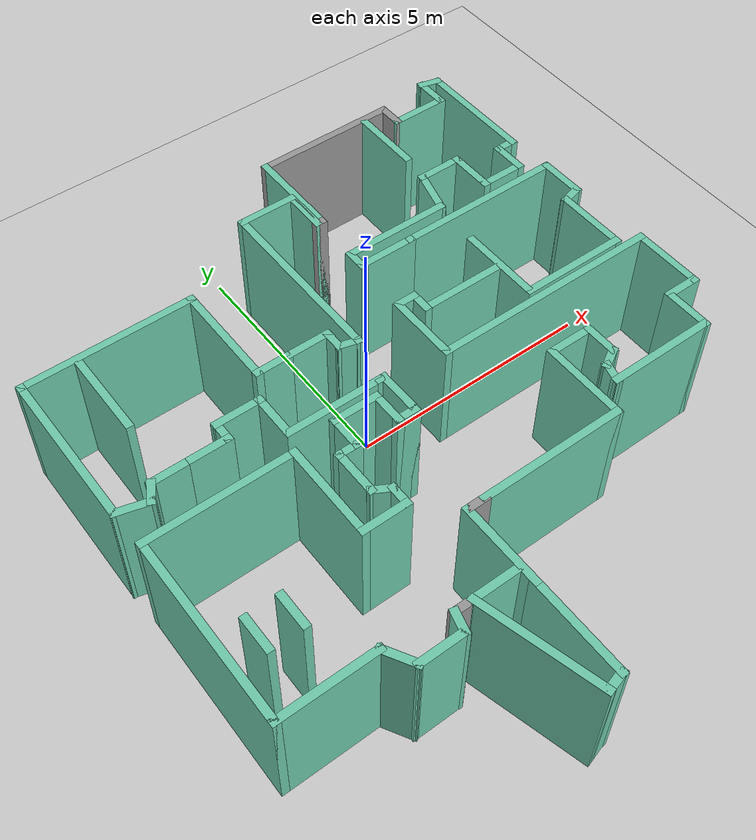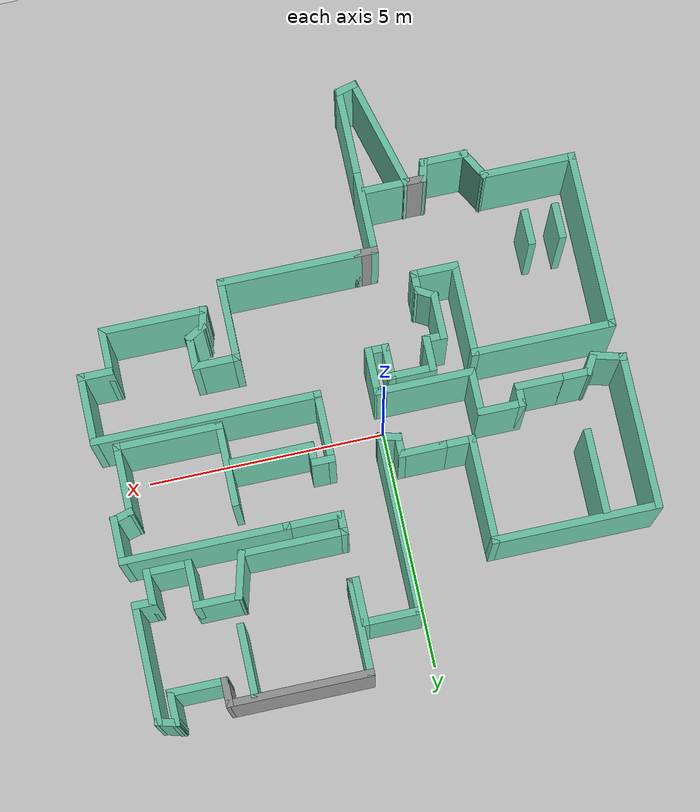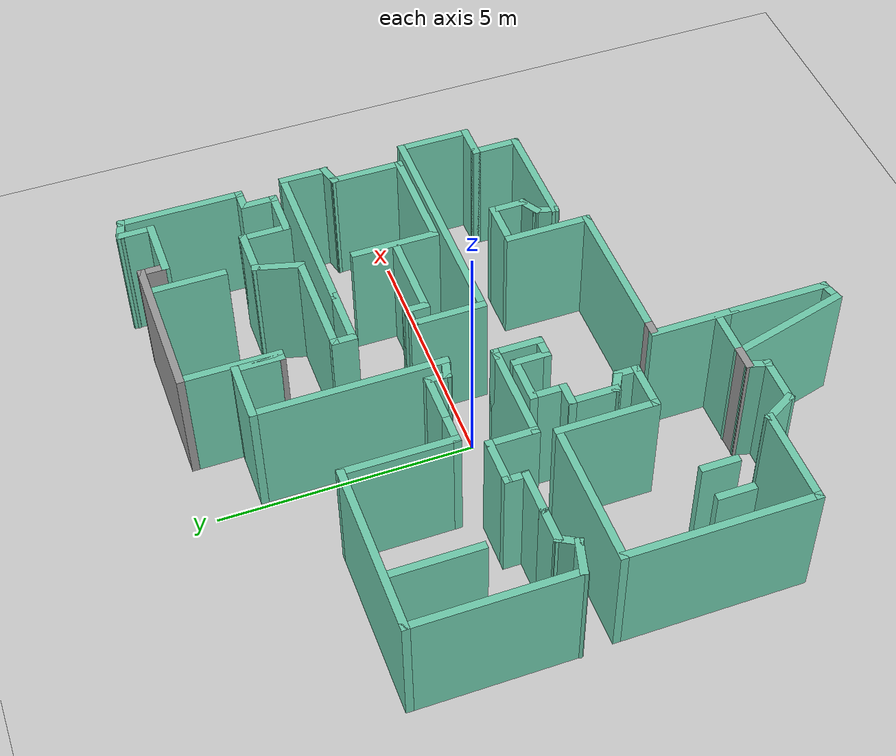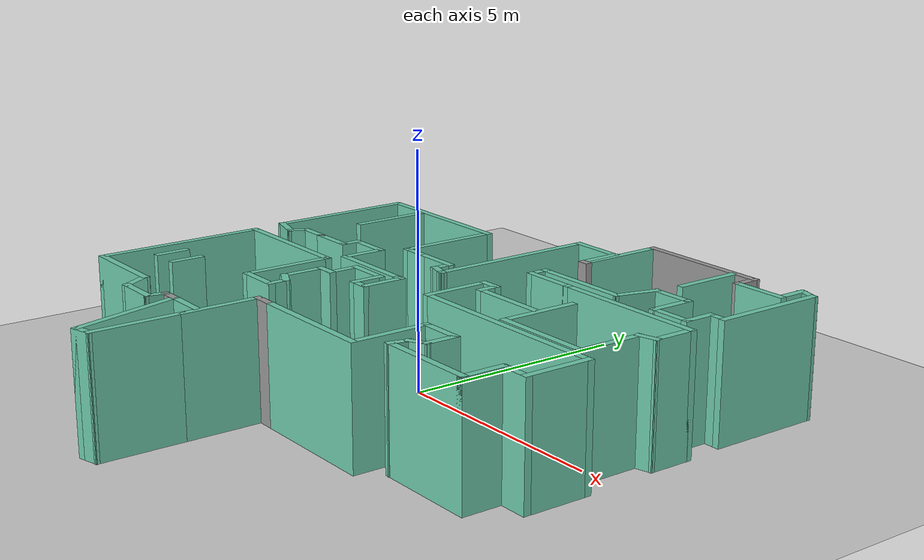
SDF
<sdf version="1.7">
 <world name="default">
  <model name="ground_plane">
   <static>1</static>
   <link name="link">
    <collision name="collision">
     <geometry><plane><normal>0 0 1</normal><size>100 100</size></plane></geometry>
     <surface>
      <contact><collide_bitmask>65535</collide_bitmask></contact>
      <friction><ode><mu>100</mu><mu2>50</mu2></ode></friction>
     </surface>
    </collision>
    <visual name="visual">
     <cast_shadows>0</cast_shadows>
     <geometry><plane><normal>0 0 1</normal><size>100 100</size></plane></geometry>
     <material>
      <script><uri>file://media/materials/scripts/gazebo.material</uri><name>Gazebo/Grey</name></script>
     </material>
    </visual>
   </link>
  </model>
  <model name="map_5">
   <pose>0.420015 -0.83457 0 0 -0 0</pose>
   <link name="Wall_10">
    <collision name="Wall_10_Collision">
     <geometry><box><size>2 0.15 2.5</size></box></geometry>
     <pose>0 0 1.25 0 -0 0</pose>
    </collision>
    <visual name="Wall_10_Visual">
     <pose>0 0 1.25 0 -0 0</pose>
     <geometry><box><size>2 0.15 2.5</size></box></geometry>
     <material>
      <script><uri>file://media/materials/scripts/gazebo.material</uri><name>Gazebo/Grey</name></script>
      <ambient>0.435294 0.796078 0.67451 1</ambient>
     </material>
     <meta><layer>0</layer></meta>
    </visual>
    <pose>0.946075 4.97016 0 0 -0 -1.5708</pose>
   </link>
   <link name="Wall_100">
    <collision name="Wall_100_Collision">
     <geometry><box><size>1.5 0.15 2.5</size></box></geometry>
     <pose>0 0 1.25 0 -0 0</pose>
    </collision>
    <visual name="Wall_100_Visual">
     <pose>0 0 1.25 0 -0 0</pose>
     <geometry><box><size>1.5 0.15 2.5</size></box></geometry>
     <material>
      <script><uri>file://media/materials/scripts/gazebo.material</uri><name>Gazebo/Grey</name></script>
      <ambient>0.435294 0.796078 0.67451 1</ambient>
     </material>
     <meta><layer>0</layer></meta>
    </visual>
    <pose>3.27534 5.13947 0 0 -0 -1.5708</pose>
   </link>
   <link name="Wall_102">
    <collision name="Wall_102_Collision">
     <geometry><box><size>1.75 0.15 2.5</size></box></geometry>
     <pose>0 0 1.25 0 -0 0</pose>
    </collision>
    <visual name="Wall_102_Visual">
     <pose>0 0 1.25 0 -0 0</pose>
     <geometry><box><size>1.75 0.15 2.5</size></box></geometry>
     <material>
      <script><uri>file://media/materials/scripts/gazebo.material</uri><name>Gazebo/Grey</name></script>
      <ambient>0.435294 0.796078 0.67451 1</ambient>
     </material>
     <meta><layer>0</layer></meta>
    </visual>
    <pose>-4.34162 2.90374 0 0 -0 -1.5708</pose>
   </link>
   <link name="Wall_104">
    <collision name="Wall_104_Collision">
     <geometry><box><size>1 0.15 2.5</size></box></geometry>
     <pose>0 0 1.25 0 -0 0</pose>
    </collision>
    <visual name="Wall_104_Visual">
     <pose>0 0 1.25 0 -0 0</pose>
     <geometry><box><size>1 0.15 2.5</size></box></geometry>
     <material>
      <script><uri>file://media/materials/scripts/gazebo.material</uri><name>Gazebo/Grey</name></script>
      <ambient>0.435294 0.796078 0.67451 1</ambient>
     </material>
     <meta><layer>0</layer></meta>
    </visual>
    <pose>-1.46875 -3.77297 0 0 -0 0</pose>
   </link>
   <link name="Wall_106">
    <collision name="Wall_106_Collision">
     <geometry><box><size>0.75 0.15 2.5</size></box></geometry>
     <pose>0 0 1.25 0 -0 0</pose>
    </collision>
    <visual name="Wall_106_Visual">
     <pose>0 0 1.25 0 -0 0</pose>
     <geometry><box><size>0.75 0.15 2.5</size></box></geometry>
     <material>
      <script><uri>file://media/materials/scripts/gazebo.material</uri><name>Gazebo/Grey</name></script>
      <ambient>0.435294 0.796078 0.67451 1</ambient>
     </material>
     <meta><layer>0</layer></meta>
    </visual>
    <pose>-4.76989 -2.31663 0 0 -0 -1.5708</pose>
   </link>
   <link name="Wall_108">
    <collision name="Wall_108_Collision">
     <geometry><box><size>0.75 0.15 2.5</size></box></geometry>
     <pose>0 0 1.25 0 -0 0</pose>
    </collision>
    <visual name="Wall_108_Visual">
     <pose>0 0 1.25 0 -0 0</pose>
     <geometry><box><size>0.75 0.15 2.5</size></box></geometry>
     <material>
      <script><uri>file://media/materials/scripts/gazebo.material</uri><name>Gazebo/Grey</name></script>
      <ambient>0.435294 0.796078 0.67451 1</ambient>
     </material>
     <meta><layer>0</layer></meta>
    </visual>
    <pose>-4.12749 -2.31663 0 0 -0 -1.5708</pose>
   </link>
   <link name="Wall_11">
    <collision name="Wall_11_Collision">
     <geometry><box><size>0.25 0.15 2.5</size></box></geometry>
     <pose>0 0 1.25 0 -0 0</pose>
    </collision>
    <visual name="Wall_11_Visual">
     <pose>0 0 1.25 0 -0 0</pose>
     <geometry><box><size>0.25 0.15 2.5</size></box></geometry>
     <material>
      <script><uri>file://media/materials/scripts/gazebo.material</uri><name>Gazebo/Grey</name></script>
      <ambient>1 1 1 1</ambient>
     </material>
     <meta><layer>0</layer></meta>
    </visual>
    <pose>0.896075 4.04516 0 0 -0 3.14159</pose>
   </link>
   <link name="Wall_12">
    <collision name="Wall_12_Collision">
     <geometry><box><size>1 0.15 2.5</size></box></geometry>
     <pose>0 0 1.25 0 -0 0</pose>
    </collision>
    <visual name="Wall_12_Visual">
     <pose>0 0 1.25 0 -0 0</pose>
     <geometry><box><size>1 0.15 2.5</size></box></geometry>
     <material>
      <script><uri>file://media/materials/scripts/gazebo.material</uri><name>Gazebo/Grey</name></script>
      <ambient>0.435294 0.796078 0.67451 1</ambient>
     </material>
     <meta><layer>0</layer></meta>
    </visual>
    <pose>0.846075 4.47016 0 0 -0 1.5708</pose>
   </link>
   <link name="Wall_13">
    <collision name="Wall_13_Collision">
     <geometry><box><size>1.25 0.15 2.5</size></box></geometry>
     <pose>0 0 1.25 0 -0 0</pose>
    </collision>
    <visual name="Wall_13_Visual">
     <pose>0 0 1.25 0 -0 0</pose>
     <geometry><box><size>1.25 0.15 2.5</size></box></geometry>
     <material>
      <script><uri>file://media/materials/scripts/gazebo.material</uri><name>Gazebo/Grey</name></script>
      <ambient>0.435294 0.796078 0.67451 1</ambient>
     </material>
     <meta><layer>0</layer></meta>
    </visual>
    <pose>0.296075 4.89516 0 0 -0 3.14159</pose>
   </link>
   <link name="Wall_14">
    <collision name="Wall_14_Collision">
     <geometry><box><size>3.75 0.15 2.5</size></box></geometry>
     <pose>0 0 1.25 0 -0 0</pose>
    </collision>
    <visual name="Wall_14_Visual">
     <pose>0 0 1.25 0 -0 0</pose>
     <geometry><box><size>3.75 0.15 2.5</size></box></geometry>
     <material>
      <script><uri>file://media/materials/scripts/gazebo.material</uri><name>Gazebo/Grey</name></script>
      <ambient>0.435294 0.796078 0.67451 1</ambient>
     </material>
     <meta><layer>0</layer></meta>
    </visual>
    <pose>-0.253925 3.09516 0 0 -0 -1.5708</pose>
   </link>
   <link name="Wall_15">
    <collision name="Wall_15_Collision">
     <geometry><box><size>0.5 0.15 2.5</size></box></geometry>
     <pose>0 0 1.25 0 -0 0</pose>
    </collision>
    <visual name="Wall_15_Visual">
     <pose>0 0 1.25 0 -0 0</pose>
     <geometry><box><size>0.5 0.15 2.5</size></box></geometry>
     <material>
      <script><uri>file://media/materials/scripts/gazebo.material</uri><name>Gazebo/Grey</name></script>
      <ambient>0.435294 0.796078 0.67451 1</ambient>
     </material>
     <meta><layer>0</layer></meta>
    </visual>
    <pose>-0.422962 1.34046 0 0 -0 2.87979</pose>
   </link>
   <link name="Wall_16">
    <collision name="Wall_16_Collision">
     <geometry><box><size>0.5 0.15 2.5</size></box></geometry>
     <pose>0 0 1.25 0 -0 0</pose>
    </collision>
    <visual name="Wall_16_Visual">
     <pose>0 0 1.25 0 -0 0</pose>
     <geometry><box><size>0.5 0.15 2.5</size></box></geometry>
     <material>
      <script><uri>file://media/materials/scripts/gazebo.material</uri><name>Gazebo/Grey</name></script>
      <ambient>0.435294 0.796078 0.67451 1</ambient>
     </material>
     <meta><layer>0</layer></meta>
    </visual>
    <pose>-0.591999 1.56075 0 0 -0 1.5708</pose>
   </link>
   <link name="Wall_17">
    <collision name="Wall_17_Collision">
     <geometry><box><size>1 0.15 2.5</size></box></geometry>
     <pose>0 0 1.25 0 -0 0</pose>
    </collision>
    <visual name="Wall_17_Visual">
     <pose>0 0 1.25 0 -0 0</pose>
     <geometry><box><size>1 0.15 2.5</size></box></geometry>
     <material>
      <script><uri>file://media/materials/scripts/gazebo.material</uri><name>Gazebo/Grey</name></script>
      <ambient>0.435294 0.796078 0.67451 1</ambient>
     </material>
     <meta><layer>0</layer></meta>
    </visual>
    <pose>-1.017 1.73575 0 0 -0 3.14159</pose>
   </link>
   <link name="Wall_18">
    <collision name="Wall_18_Collision">
     <geometry><box><size>0.75 0.15 2.5</size></box></geometry>
     <pose>0 0 1.25 0 -0 0</pose>
    </collision>
    <visual name="Wall_18_Visual">
     <pose>0 0 1.25 0 -0 0</pose>
     <geometry><box><size>0.75 0.15 2.5</size></box></geometry>
     <material>
      <script><uri>file://media/materials/scripts/gazebo.material</uri><name>Gazebo/Grey</name></script>
      <ambient>0.435294 0.796078 0.67451 1</ambient>
     </material>
     <meta><layer>0</layer></meta>
    </visual>
    <pose>-1.742 1.73575 0 0 -0 3.14159</pose>
   </link>
   <link name="Wall_19">
    <collision name="Wall_19_Collision">
     <geometry><box><size>2.25 0.15 2.5</size></box></geometry>
     <pose>0 0 1.25 0 -0 0</pose>
    </collision>
    <visual name="Wall_19_Visual">
     <pose>0 0 1.25 0 -0 0</pose>
     <geometry><box><size>2.25 0.15 2.5</size></box></geometry>
     <material>
      <script><uri>file://media/materials/scripts/gazebo.material</uri><name>Gazebo/Grey</name></script>
      <ambient>0.435294 0.796078 0.67451 1</ambient>
     </material>
     <meta><layer>0</layer></meta>
    </visual>
    <pose>-2.042 2.78575 0 0 -0 1.5708</pose>
   </link>
   <link name="Wall_20">
    <collision name="Wall_20_Collision">
     <geometry><box><size>3.5 0.15 2.5</size></box></geometry>
     <pose>0 0 1.25 0 -0 0</pose>
    </collision>
    <visual name="Wall_20_Visual">
     <pose>0 0 1.25 0 -0 0</pose>
     <geometry><box><size>3.5 0.15 2.5</size></box></geometry>
     <material>
      <script><uri>file://media/materials/scripts/gazebo.material</uri><name>Gazebo/Grey</name></script>
      <ambient>0.435294 0.796078 0.67451 1</ambient>
     </material>
     <meta><layer>0</layer></meta>
    </visual>
    <pose>-3.717 3.83575 0 0 -0 3.14159</pose>
   </link>
   <link name="Wall_21">
    <collision name="Wall_21_Collision">
     <geometry><box><size>3.25 0.15 2.5</size></box></geometry>
     <pose>0 0 1.25 0 -0 0</pose>
    </collision>
    <visual name="Wall_21_Visual">
     <pose>0 0 1.25 0 -0 0</pose>
     <geometry><box><size>3.25 0.15 2.5</size></box></geometry>
     <material>
      <script><uri>file://media/materials/scripts/gazebo.material</uri><name>Gazebo/Grey</name></script>
      <ambient>0.435294 0.796078 0.67451 1</ambient>
     </material>
     <meta><layer>0</layer></meta>
    </visual>
    <pose>-5.392 2.28575 0 0 -0 -1.5708</pose>
   </link>
   <link name="Wall_22">
    <collision name="Wall_22_Collision">
     <geometry><box><size>0.75 0.15 2.5</size></box></geometry>
     <pose>0 0 1.25 0 -0 0</pose>
    </collision>
    <visual name="Wall_22_Visual">
     <pose>0 0 1.25 0 -0 0</pose>
     <geometry><box><size>0.75 0.15 2.5</size></box></geometry>
     <material>
      <script><uri>file://media/materials/scripts/gazebo.material</uri><name>Gazebo/Grey</name></script>
      <ambient>0.435294 0.796078 0.67451 1</ambient>
     </material>
     <meta><layer>0</layer></meta>
    </visual>
    <pose>-5.10222 0.658104 0 0 -0 -0.261799</pose>
   </link>
   <link name="Wall_23">
    <collision name="Wall_23_Collision">
     <geometry><box><size>0.5 0.15 2.5</size></box></geometry>
     <pose>0 0 1.25 0 -0 0</pose>
    </collision>
    <visual name="Wall_23_Visual">
     <pose>0 0 1.25 0 -0 0</pose>
     <geometry><box><size>0.5 0.15 2.5</size></box></geometry>
     <material>
      <script><uri>file://media/materials/scripts/gazebo.material</uri><name>Gazebo/Grey</name></script>
      <ambient>0.435294 0.796078 0.67451 1</ambient>
     </material>
     <meta><layer>0</layer></meta>
    </visual>
    <pose>-4.72494 0.732012 0 0 -0 1.0472</pose>
   </link>
   <link name="Wall_24">
    <collision name="Wall_24_Collision">
     <geometry><box><size>0.75 0.15 2.5</size></box></geometry>
     <pose>0 0 1.25 0 -0 0</pose>
    </collision>
    <visual name="Wall_24_Visual">
     <pose>0 0 1.25 0 -0 0</pose>
     <geometry><box><size>0.75 0.15 2.5</size></box></geometry>
     <material>
      <script><uri>file://media/materials/scripts/gazebo.material</uri><name>Gazebo/Grey</name></script>
      <ambient>0.435294 0.796078 0.67451 1</ambient>
     </material>
     <meta><layer>0</layer></meta>
    </visual>
    <pose>-4.33744 0.883567 0 0 -0 0</pose>
   </link>
   <link name="Wall_25">
    <collision name="Wall_25_Collision">
     <geometry><box><size>0.15 0.15 2.5</size></box></geometry>
     <pose>0 0 1.25 0 -0 0</pose>
    </collision>
    <visual name="Wall_25_Visual">
     <pose>0 0 1.25 0 -0 0</pose>
     <geometry><box><size>0.15 0.15 2.5</size></box></geometry>
     <material>
      <script><uri>file://media/materials/scripts/gazebo.material</uri><name>Gazebo/Grey</name></script>
      <ambient>1 1 1 1</ambient>
     </material>
     <meta><layer>0</layer></meta>
    </visual>
    <pose>-4.03744 0.883567 0 0 -0 0</pose>
   </link>
   <link name="Wall_26">
    <collision name="Wall_26_Collision">
     <geometry><box><size>1 0.15 2.5</size></box></geometry>
     <pose>0 0 1.25 0 -0 0</pose>
    </collision>
    <visual name="Wall_26_Visual">
     <pose>0 0 1.25 0 -0 0</pose>
     <geometry><box><size>1 0.15 2.5</size></box></geometry>
     <material>
      <script><uri>file://media/materials/scripts/gazebo.material</uri><name>Gazebo/Grey</name></script>
      <ambient>0.435294 0.796078 0.67451 1</ambient>
     </material>
     <meta><layer>0</layer></meta>
    </visual>
    <pose>-3.61244 0.883567 0 0 -0 0</pose>
   </link>
   <link name="Wall_27">
    <collision name="Wall_27_Collision">
     <geometry><box><size>0.5 0.15 2.5</size></box></geometry>
     <pose>0 0 1.25 0 -0 0</pose>
    </collision>
    <visual name="Wall_27_Visual">
     <pose>0 0 1.25 0 -0 0</pose>
     <geometry><box><size>0.5 0.15 2.5</size></box></geometry>
     <material>
      <script><uri>file://media/materials/scripts/gazebo.material</uri><name>Gazebo/Grey</name></script>
      <ambient>0.435294 0.796078 0.67451 1</ambient>
     </material>
     <meta><layer>0</layer></meta>
    </visual>
    <pose>-3.18744 1.05857 0 0 -0 1.5708</pose>
   </link>
   <link name="Wall_28">
    <collision name="Wall_28_Collision">
     <geometry><box><size>1 0.15 2.5</size></box></geometry>
     <pose>0 0 1.25 0 -0 0</pose>
    </collision>
    <visual name="Wall_28_Visual">
     <pose>0 0 1.25 0 -0 0</pose>
     <geometry><box><size>1 0.15 2.5</size></box></geometry>
     <material>
      <script><uri>file://media/materials/scripts/gazebo.material</uri><name>Gazebo/Grey</name></script>
      <ambient>0.435294 0.796078 0.67451 1</ambient>
     </material>
     <meta><layer>0</layer></meta>
    </visual>
    <pose>-2.76244 1.23357 0 0 -0 0</pose>
   </link>
   <link name="Wall_29">
    <collision name="Wall_29_Collision">
     <geometry><box><size>1 0.15 2.5</size></box></geometry>
     <pose>0 0 1.25 0 -0 0</pose>
    </collision>
    <visual name="Wall_29_Visual">
     <pose>0 0 1.25 0 -0 0</pose>
     <geometry><box><size>1 0.15 2.5</size></box></geometry>
     <material>
      <script><uri>file://media/materials/scripts/gazebo.material</uri><name>Gazebo/Grey</name></script>
      <ambient>0.435294 0.796078 0.67451 1</ambient>
     </material>
     <meta><layer>0</layer></meta>
    </visual>
    <pose>-2.33744 0.808567 0 0 -0 -1.5708</pose>
   </link>
   <link name="Wall_30">
    <collision name="Wall_30_Collision">
     <geometry><box><size>2 0.15 2.5</size></box></geometry>
     <pose>0 0 1.25 0 -0 0</pose>
    </collision>
    <visual name="Wall_30_Visual">
     <pose>0 0 1.25 0 -0 0</pose>
     <geometry><box><size>2 0.15 2.5</size></box></geometry>
     <material>
      <script><uri>file://media/materials/scripts/gazebo.material</uri><name>Gazebo/Grey</name></script>
      <ambient>0.435294 0.796078 0.67451 1</ambient>
     </material>
     <meta><layer>0</layer></meta>
    </visual>
    <pose>-1.41244 0.383567 0 0 -0 0</pose>
   </link>
   <link name="Wall_32">
    <collision name="Wall_32_Collision">
     <geometry><box><size>0.25 0.15 2.5</size></box></geometry>
     <pose>0 0 1.25 0 -0 0</pose>
    </collision>
    <visual name="Wall_32_Visual">
     <pose>0 0 1.25 0 -0 0</pose>
     <geometry><box><size>0.25 0.15 2.5</size></box></geometry>
     <material>
      <script><uri>file://media/materials/scripts/gazebo.material</uri><name>Gazebo/Grey</name></script>
      <ambient>0.435294 0.796078 0.67451 1</ambient>
     </material>
     <meta><layer>0</layer></meta>
    </visual>
    <pose>-0.437444 0.383567 0 0 -0 0</pose>
   </link>
   <link name="Wall_33">
    <collision name="Wall_33_Collision">
     <geometry><box><size>1 0.15 2.5</size></box></geometry>
     <pose>0 0 1.25 0 -0 0</pose>
    </collision>
    <visual name="Wall_33_Visual">
     <pose>0 0 1.25 0 -0 0</pose>
     <geometry><box><size>1 0.15 2.5</size></box></geometry>
     <material>
      <script><uri>file://media/materials/scripts/gazebo.material</uri><name>Gazebo/Grey</name></script>
      <ambient>0.435294 0.796078 0.67451 1</ambient>
     </material>
     <meta><layer>0</layer></meta>
    </visual>
    <pose>-0.387444 -0.041433 0 0 -0 -1.5708</pose>
   </link>
   <link name="Wall_34">
    <collision name="Wall_34_Collision">
     <geometry><box><size>0.5 0.15 2.5</size></box></geometry>
     <pose>0 0 1.25 0 -0 0</pose>
    </collision>
    <visual name="Wall_34_Visual">
     <pose>0 0 1.25 0 -0 0</pose>
     <geometry><box><size>0.5 0.15 2.5</size></box></geometry>
     <material>
      <script><uri>file://media/materials/scripts/gazebo.material</uri><name>Gazebo/Grey</name></script>
      <ambient>0.435294 0.796078 0.67451 1</ambient>
     </material>
     <meta><layer>0</layer></meta>
    </visual>
    <pose>-0.562444 -0.466433 0 0 -0 3.14159</pose>
   </link>
   <link name="Wall_35">
    <collision name="Wall_35_Collision">
     <geometry><box><size>0.75 0.15 2.5</size></box></geometry>
     <pose>0 0 1.25 0 -0 0</pose>
    </collision>
    <visual name="Wall_35_Visual">
     <pose>0 0 1.25 0 -0 0</pose>
     <geometry><box><size>0.75 0.15 2.5</size></box></geometry>
     <material>
      <script><uri>file://media/materials/scripts/gazebo.material</uri><name>Gazebo/Grey</name></script>
      <ambient>0.435294 0.796078 0.67451 1</ambient>
     </material>
     <meta><layer>0</layer></meta>
    </visual>
    <pose>-0.737444 -0.166433 0 0 -0 1.5708</pose>
   </link>
   <link name="Wall_36">
    <collision name="Wall_36_Collision">
     <geometry><box><size>1 0.15 2.5</size></box></geometry>
     <pose>0 0 1.25 0 -0 0</pose>
    </collision>
    <visual name="Wall_36_Visual">
     <pose>0 0 1.25 0 -0 0</pose>
     <geometry><box><size>1 0.15 2.5</size></box></geometry>
     <material>
      <script><uri>file://media/materials/scripts/gazebo.material</uri><name>Gazebo/Grey</name></script>
      <ambient>0.435294 0.796078 0.67451 1</ambient>
     </material>
     <meta><layer>0</layer></meta>
    </visual>
    <pose>-1.16244 0.133567 0 0 -0 3.14159</pose>
   </link>
   <link name="Wall_37">
    <collision name="Wall_37_Collision">
     <geometry><box><size>0.75 0.15 2.5</size></box></geometry>
     <pose>0 0 1.25 0 -0 0</pose>
    </collision>
    <visual name="Wall_37_Visual">
     <pose>0 0 1.25 0 -0 0</pose>
     <geometry><box><size>0.75 0.15 2.5</size></box></geometry>
     <material>
      <script><uri>file://media/materials/scripts/gazebo.material</uri><name>Gazebo/Grey</name></script>
      <ambient>0.435294 0.796078 0.67451 1</ambient>
     </material>
     <meta><layer>0</layer></meta>
    </visual>
    <pose>-1.58744 -0.166433 0 0 -0 -1.5708</pose>
   </link>
   <link name="Wall_38">
    <collision name="Wall_38_Collision">
     <geometry><box><size>0.5 0.15 2.5</size></box></geometry>
     <pose>0 0 1.25 0 -0 0</pose>
    </collision>
    <visual name="Wall_38_Visual">
     <pose>0 0 1.25 0 -0 0</pose>
     <geometry><box><size>0.5 0.15 2.5</size></box></geometry>
     <material>
      <script><uri>file://media/materials/scripts/gazebo.material</uri><name>Gazebo/Grey</name></script>
      <ambient>0.435294 0.796078 0.67451 1</ambient>
     </material>
     <meta><layer>0</layer></meta>
    </visual>
    <pose>-1.76244 -0.466433 0 0 -0 3.14159</pose>
   </link>
   <link name="Wall_39">
    <collision name="Wall_39_Collision">
     <geometry><box><size>1 0.15 2.5</size></box></geometry>
     <pose>0 0 1.25 0 -0 0</pose>
    </collision>
    <visual name="Wall_39_Visual">
     <pose>0 0 1.25 0 -0 0</pose>
     <geometry><box><size>1 0.15 2.5</size></box></geometry>
     <material>
      <script><uri>file://media/materials/scripts/gazebo.material</uri><name>Gazebo/Grey</name></script>
      <ambient>0.435294 0.796078 0.67451 1</ambient>
     </material>
     <meta><layer>0</layer></meta>
    </visual>
    <pose>-1.93744 -0.891433 0 0 -0 -1.5708</pose>
   </link>
   <link name="Wall_40">
    <collision name="Wall_40_Collision">
     <geometry><box><size>0.5 0.15 2.5</size></box></geometry>
     <pose>0 0 1.25 0 -0 0</pose>
    </collision>
    <visual name="Wall_40_Visual">
     <pose>0 0 1.25 0 -0 0</pose>
     <geometry><box><size>0.5 0.15 2.5</size></box></geometry>
     <material>
      <script><uri>file://media/materials/scripts/gazebo.material</uri><name>Gazebo/Grey</name></script>
      <ambient>0.435294 0.796078 0.67451 1</ambient>
     </material>
     <meta><layer>0</layer></meta>
    </visual>
    <pose>-1.78589 -1.40393 0 0 -0 -0.523599</pose>
   </link>
   <link name="Wall_41">
    <collision name="Wall_41_Collision">
     <geometry><box><size>0.5 0.15 2.5</size></box></geometry>
     <pose>0 0 1.25 0 -0 0</pose>
    </collision>
    <visual name="Wall_41_Visual">
     <pose>0 0 1.25 0 -0 0</pose>
     <geometry><box><size>0.5 0.15 2.5</size></box></geometry>
     <material>
      <script><uri>file://media/materials/scripts/gazebo.material</uri><name>Gazebo/Grey</name></script>
      <ambient>0.435294 0.796078 0.67451 1</ambient>
     </material>
     <meta><layer>0</layer></meta>
    </visual>
    <pose>-1.63434 -1.66643 0 0 -0 -1.5708</pose>
   </link>
   <link name="Wall_42">
    <collision name="Wall_42_Collision">
     <geometry><box><size>1 0.15 2.5</size></box></geometry>
     <pose>0 0 1.25 0 -0 0</pose>
    </collision>
    <visual name="Wall_42_Visual">
     <pose>0 0 1.25 0 -0 0</pose>
     <geometry><box><size>1 0.15 2.5</size></box></geometry>
     <material>
      <script><uri>file://media/materials/scripts/gazebo.material</uri><name>Gazebo/Grey</name></script>
      <ambient>0.435294 0.796078 0.67451 1</ambient>
     </material>
     <meta><layer>0</layer></meta>
    </visual>
    <pose>-2.05933 -1.84143 0 0 -0 3.14159</pose>
   </link>
   <link name="Wall_43">
    <collision name="Wall_43_Collision">
     <geometry><box><size>2 0.15 2.5</size></box></geometry>
     <pose>0 0 1.25 0 -0 0</pose>
    </collision>
    <visual name="Wall_43_Visual">
     <pose>0 0 1.25 0 -0 0</pose>
     <geometry><box><size>2 0.15 2.5</size></box></geometry>
     <material>
      <script><uri>file://media/materials/scripts/gazebo.material</uri><name>Gazebo/Grey</name></script>
      <ambient>0.435294 0.796078 0.67451 1</ambient>
     </material>
     <meta><layer>0</layer></meta>
    </visual>
    <pose>-2.48434 -0.916433 0 0 -0 1.5708</pose>
   </link>
   <link name="Wall_44">
    <collision name="Wall_44_Collision">
     <geometry><box><size>3 0.15 2.5</size></box></geometry>
     <pose>0 0 1.25 0 -0 0</pose>
    </collision>
    <visual name="Wall_44_Visual">
     <pose>0 0 1.25 0 -0 0</pose>
     <geometry><box><size>3 0.15 2.5</size></box></geometry>
     <material>
      <script><uri>file://media/materials/scripts/gazebo.material</uri><name>Gazebo/Grey</name></script>
      <ambient>0.435294 0.796078 0.67451 1</ambient>
     </material>
     <meta><layer>0</layer></meta>
    </visual>
    <pose>-3.90934 0.008567 0 0 -0 3.14159</pose>
   </link>
   <link name="Wall_45">
    <collision name="Wall_45_Collision">
     <geometry><box><size>3.75 0.15 2.5</size></box></geometry>
     <pose>0 0 1.25 0 -0 0</pose>
    </collision>
    <visual name="Wall_45_Visual">
     <pose>0 0 1.25 0 -0 0</pose>
     <geometry><box><size>3.75 0.15 2.5</size></box></geometry>
     <material>
      <script><uri>file://media/materials/scripts/gazebo.material</uri><name>Gazebo/Grey</name></script>
      <ambient>0.435294 0.796078 0.67451 1</ambient>
     </material>
     <meta><layer>0</layer></meta>
    </visual>
    <pose>-5.33434 -1.79143 0 0 -0 -1.5708</pose>
   </link>
   <link name="Wall_46">
    <collision name="Wall_46_Collision">
     <geometry><box><size>2 0.15 2.5</size></box></geometry>
     <pose>0 0 1.25 0 -0 0</pose>
    </collision>
    <visual name="Wall_46_Visual">
     <pose>0 0 1.25 0 -0 0</pose>
     <geometry><box><size>2 0.15 2.5</size></box></geometry>
     <material>
      <script><uri>file://media/materials/scripts/gazebo.material</uri><name>Gazebo/Grey</name></script>
      <ambient>0.435294 0.796078 0.67451 1</ambient>
     </material>
     <meta><layer>0</layer></meta>
    </visual>
    <pose>-4.40933 -3.59143 0 0 -0 0</pose>
   </link>
   <link name="Wall_47">
    <collision name="Wall_47_Collision">
     <geometry><box><size>0.75 0.15 2.5</size></box></geometry>
     <pose>0 0 1.25 0 -0 0</pose>
    </collision>
    <visual name="Wall_47_Visual">
     <pose>0 0 1.25 0 -0 0</pose>
     <geometry><box><size>0.75 0.15 2.5</size></box></geometry>
     <material>
      <script><uri>file://media/materials/scripts/gazebo.material</uri><name>Gazebo/Grey</name></script>
      <ambient>0.435294 0.796078 0.67451 1</ambient>
     </material>
     <meta><layer>0</layer></meta>
    </visual>
    <pose>-3.33433 -3.85124 0 0 -0 -1.0472</pose>
   </link>
   <link name="Wall_48">
    <collision name="Wall_48_Collision">
     <geometry><box><size>1 0.15 2.5</size></box></geometry>
     <pose>0 0 1.25 0 -0 0</pose>
    </collision>
    <visual name="Wall_48_Visual">
     <pose>0 0 1.25 0 -0 0</pose>
     <geometry><box><size>1 0.15 2.5</size></box></geometry>
     <material>
      <script><uri>file://media/materials/scripts/gazebo.material</uri><name>Gazebo/Grey</name></script>
      <ambient>0.435294 0.796078 0.67451 1</ambient>
     </material>
     <meta><layer>0</layer></meta>
    </visual>
    <pose>-2.75934 -4.11105 0 0 -0 0</pose>
   </link>
   <link name="Wall_49">
    <collision name="Wall_49_Collision">
     <geometry><box><size>0.5 0.15 2.5</size></box></geometry>
     <pose>0 0 1.25 0 -0 0</pose>
    </collision>
    <visual name="Wall_49_Visual">
     <pose>0 0 1.25 0 -0 0</pose>
     <geometry><box><size>0.5 0.15 2.5</size></box></geometry>
     <material>
      <script><uri>file://media/materials/scripts/gazebo.material</uri><name>Gazebo/Grey</name></script>
      <ambient>0.435294 0.796078 0.67451 1</ambient>
     </material>
     <meta><layer>0</layer></meta>
    </visual>
    <pose>-2.28904 -3.94201 0 0 -0 1.309</pose>
   </link>
   <link name="Wall_50">
    <collision name="Wall_50_Collision">
     <geometry><box><size>0.5 0.15 2.5</size></box></geometry>
     <pose>0 0 1.25 0 -0 0</pose>
    </collision>
    <visual name="Wall_50_Visual">
     <pose>0 0 1.25 0 -0 0</pose>
     <geometry><box><size>0.5 0.15 2.5</size></box></geometry>
     <material>
      <script><uri>file://media/materials/scripts/gazebo.material</uri><name>Gazebo/Grey</name></script>
      <ambient>1 1 1 1</ambient>
     </material>
     <meta><layer>0</layer></meta>
    </visual>
    <pose>-2.06875 -3.77297 0 0 -0 0</pose>
   </link>
   <link name="Wall_51">
    <collision name="Wall_51_Collision">
     <geometry><box><size>2.5 0.15 2.5</size></box></geometry>
     <pose>0 0 1.25 0 -0 0</pose>
    </collision>
    <visual name="Wall_51_Visual">
     <pose>0 0 1.25 0 -0 0</pose>
     <geometry><box><size>2.5 0.15 2.5</size></box></geometry>
     <material>
      <script><uri>file://media/materials/scripts/gazebo.material</uri><name>Gazebo/Grey</name></script>
      <ambient>0.435294 0.796078 0.67451 1</ambient>
     </material>
     <meta><layer>0</layer></meta>
    </visual>
    <pose>-1.58964 -4.90794 0 0 -0 -1.309</pose>
   </link>
   <link name="Wall_52">
    <collision name="Wall_52_Collision">
     <geometry><box><size>0.5 0.15 2.5</size></box></geometry>
     <pose>0 0 1.25 0 -0 0</pose>
    </collision>
    <visual name="Wall_52_Visual">
     <pose>0 0 1.25 0 -0 0</pose>
     <geometry><box><size>0.5 0.15 2.5</size></box></geometry>
     <material>
      <script><uri>file://media/materials/scripts/gazebo.material</uri><name>Gazebo/Grey</name></script>
      <ambient>0.435294 0.796078 0.67451 1</ambient>
     </material>
     <meta><layer>0</layer></meta>
    </visual>
    <pose>-1.11649 -5.99761 0 0 -0 0.261799</pose>
   </link>
   <link name="Wall_53">
    <collision name="Wall_53_Collision">
     <geometry><box><size>2 0.15 2.5</size></box></geometry>
     <pose>0 0 1.25 0 -0 0</pose>
    </collision>
    <visual name="Wall_53_Visual">
     <pose>0 0 1.25 0 -0 0</pose>
     <geometry><box><size>2 0.15 2.5</size></box></geometry>
     <material>
      <script><uri>file://media/materials/scripts/gazebo.material</uri><name>Gazebo/Grey</name></script>
      <ambient>0.435294 0.796078 0.67451 1</ambient>
     </material>
     <meta><layer>0</layer></meta>
    </visual>
    <pose>-0.947449 -5.02731 0 0 -0 1.5708</pose>
   </link>
   <link name="Wall_54">
    <collision name="Wall_54_Collision">
     <geometry><box><size>1.75 0.15 2.5</size></box></geometry>
     <pose>0 0 1.25 0 -0 0</pose>
    </collision>
    <visual name="Wall_54_Visual">
     <pose>0 0 1.25 0 -0 0</pose>
     <geometry><box><size>1.75 0.15 2.5</size></box></geometry>
     <material>
      <script><uri>file://media/materials/scripts/gazebo.material</uri><name>Gazebo/Grey</name></script>
      <ambient>0.435294 0.796078 0.67451 1</ambient>
     </material>
     <meta><layer>0</layer></meta>
    </visual>
    <pose>-0.947449 -3.30231 0 0 -0 1.5708</pose>
   </link>
   <link name="Wall_55">
    <collision name="Wall_55_Collision">
     <geometry><box><size>0.5 0.15 2.5</size></box></geometry>
     <pose>0 0 1.25 0 -0 0</pose>
    </collision>
    <visual name="Wall_55_Visual">
     <pose>0 0 1.25 0 -0 0</pose>
     <geometry><box><size>0.5 0.15 2.5</size></box></geometry>
     <material>
      <script><uri>file://media/materials/scripts/gazebo.material</uri><name>Gazebo/Grey</name></script>
      <ambient>1 1 1 1</ambient>
     </material>
     <meta><layer>0</layer></meta>
    </visual>
    <pose>-0.772449 -2.50231 0 0 -0 0</pose>
   </link>
   <link name="Wall_56">
    <collision name="Wall_56_Collision">
     <geometry><box><size>3 0.15 2.5</size></box></geometry>
     <pose>0 0 1.25 0 -0 0</pose>
    </collision>
    <visual name="Wall_56_Visual">
     <pose>0 0 1.25 0 -0 0</pose>
     <geometry><box><size>3 0.15 2.5</size></box></geometry>
     <material>
      <script><uri>file://media/materials/scripts/gazebo.material</uri><name>Gazebo/Grey</name></script>
      <ambient>0.435294 0.796078 0.67451 1</ambient>
     </material>
     <meta><layer>0</layer></meta>
    </visual>
    <pose>0.827551 -2.50231 0 0 -0 0</pose>
   </link>
   <link name="Wall_57">
    <collision name="Wall_57_Collision">
     <geometry><box><size>1.75 0.15 2.5</size></box></geometry>
     <pose>0 0 1.25 0 -0 0</pose>
    </collision>
    <visual name="Wall_57_Visual">
     <pose>0 0 1.25 0 -0 0</pose>
     <geometry><box><size>1.75 0.15 2.5</size></box></geometry>
     <material>
      <script><uri>file://media/materials/scripts/gazebo.material</uri><name>Gazebo/Grey</name></script>
      <ambient>0.435294 0.796078 0.67451 1</ambient>
     </material>
     <meta><layer>0</layer></meta>
    </visual>
    <pose>2.25255 -1.70231 0 0 -0 1.5708</pose>
   </link>
   <link name="Wall_58">
    <collision name="Wall_58_Collision">
     <geometry><box><size>1 0.15 2.5</size></box></geometry>
     <pose>0 0 1.25 0 -0 0</pose>
    </collision>
    <visual name="Wall_58_Visual">
     <pose>0 0 1.25 0 -0 0</pose>
     <geometry><box><size>1 0.15 2.5</size></box></geometry>
     <material>
      <script><uri>file://media/materials/scripts/gazebo.material</uri><name>Gazebo/Grey</name></script>
      <ambient>0.435294 0.796078 0.67451 1</ambient>
     </material>
     <meta><layer>0</layer></meta>
    </visual>
    <pose>2.67755 -0.902313 0 0 -0 0</pose>
   </link>
   <link name="Wall_59">
    <collision name="Wall_59_Collision">
     <geometry><box><size>0.75 0.15 2.5</size></box></geometry>
     <pose>0 0 1.25 0 -0 0</pose>
    </collision>
    <visual name="Wall_59_Visual">
     <pose>0 0 1.25 0 -0 0</pose>
     <geometry><box><size>0.75 0.15 2.5</size></box></geometry>
     <material>
      <script><uri>file://media/materials/scripts/gazebo.material</uri><name>Gazebo/Grey</name></script>
      <ambient>0.435294 0.796078 0.67451 1</ambient>
     </material>
     <meta><layer>0</layer></meta>
    </visual>
    <pose>3.10255 -1.20231 0 0 -0 -1.5708</pose>
   </link>
   <link name="Wall_60">
    <collision name="Wall_60_Collision">
     <geometry><box><size>0.5 0.15 2.5</size></box></geometry>
     <pose>0 0 1.25 0 -0 0</pose>
    </collision>
    <visual name="Wall_60_Visual">
     <pose>0 0 1.25 0 -0 0</pose>
     <geometry><box><size>0.5 0.15 2.5</size></box></geometry>
     <material>
      <script><uri>file://media/materials/scripts/gazebo.material</uri><name>Gazebo/Grey</name></script>
      <ambient>0.435294 0.796078 0.67451 1</ambient>
     </material>
     <meta><layer>0</layer></meta>
    </visual>
    <pose>2.951 -1.58981 0 0 -0 -2.61799</pose>
   </link>
   <link name="Wall_61">
    <collision name="Wall_61_Collision">
     <geometry><box><size>0.5 0.15 2.5</size></box></geometry>
     <pose>0 0 1.25 0 -0 0</pose>
    </collision>
    <visual name="Wall_61_Visual">
     <pose>0 0 1.25 0 -0 0</pose>
     <geometry><box><size>0.5 0.15 2.5</size></box></geometry>
     <material>
      <script><uri>file://media/materials/scripts/gazebo.material</uri><name>Gazebo/Grey</name></script>
      <ambient>0.435294 0.796078 0.67451 1</ambient>
     </material>
     <meta><layer>0</layer></meta>
    </visual>
    <pose>2.75415 -1.84635 0 0 -0 -1.8326</pose>
   </link>
   <link name="Wall_62">
    <collision name="Wall_62_Collision">
     <geometry><box><size>2.25 0.15 2.5</size></box></geometry>
     <pose>0 0 1.25 0 -0 0</pose>
    </collision>
    <visual name="Wall_62_Visual">
     <pose>0 0 1.25 0 -0 0</pose>
     <geometry><box><size>2.25 0.15 2.5</size></box></geometry>
     <material>
      <script><uri>file://media/materials/scripts/gazebo.material</uri><name>Gazebo/Grey</name></script>
      <ambient>0.435294 0.796078 0.67451 1</ambient>
     </material>
     <meta><layer>0</layer></meta>
    </visual>
    <pose>3.75886 -2.01539 0 0 -0 0</pose>
   </link>
   <link name="Wall_65">
    <collision name="Wall_65_Collision">
     <geometry><box><size>1 0.15 2.5</size></box></geometry>
     <pose>0 0 1.25 0 -0 0</pose>
    </collision>
    <visual name="Wall_65_Visual">
     <pose>0 0 1.25 0 -0 0</pose>
     <geometry><box><size>1 0.15 2.5</size></box></geometry>
     <material>
      <script><uri>file://media/materials/scripts/gazebo.material</uri><name>Gazebo/Grey</name></script>
      <ambient>0.435294 0.796078 0.67451 1</ambient>
     </material>
     <meta><layer>0</layer></meta>
    </visual>
    <pose>4.80886 -1.59039 0 0 -0 1.5708</pose>
   </link>
   <link name="Wall_66">
    <collision name="Wall_66_Collision">
     <geometry><box><size>0.75 0.15 2.5</size></box></geometry>
     <pose>0 0 1.25 0 -0 0</pose>
    </collision>
    <visual name="Wall_66_Visual">
     <pose>0 0 1.25 0 -0 0</pose>
     <geometry><box><size>0.75 0.15 2.5</size></box></geometry>
     <material>
      <script><uri>file://media/materials/scripts/gazebo.material</uri><name>Gazebo/Grey</name></script>
      <ambient>0.435294 0.796078 0.67451 1</ambient>
     </material>
     <meta><layer>0</layer></meta>
    </visual>
    <pose>5.10886 -1.16539 0 0 -0 0</pose>
   </link>
   <link name="Wall_67">
    <collision name="Wall_67_Collision">
     <geometry><box><size>1.5 0.15 2.5</size></box></geometry>
     <pose>0 0 1.25 0 -0 0</pose>
    </collision>
    <visual name="Wall_67_Visual">
     <pose>0 0 1.25 0 -0 0</pose>
     <geometry><box><size>1.5 0.15 2.5</size></box></geometry>
     <material>
      <script><uri>file://media/materials/scripts/gazebo.material</uri><name>Gazebo/Grey</name></script>
      <ambient>0.435294 0.796078 0.67451 1</ambient>
     </material>
     <meta><layer>0</layer></meta>
    </visual>
    <pose>5.40885 -0.490387 0 0 -0 1.5708</pose>
   </link>
   <link name="Wall_68">
    <collision name="Wall_68_Collision">
     <geometry><box><size>4.75 0.15 2.5</size></box></geometry>
     <pose>0 0 1.25 0 -0 0</pose>
    </collision>
    <visual name="Wall_68_Visual">
     <pose>0 0 1.25 0 -0 0</pose>
     <geometry><box><size>4.75 0.15 2.5</size></box></geometry>
     <material>
      <script><uri>file://media/materials/scripts/gazebo.material</uri><name>Gazebo/Grey</name></script>
      <ambient>0.435294 0.796078 0.67451 1</ambient>
     </material>
     <meta><layer>0</layer></meta>
    </visual>
    <pose>3.10886 0.184613 0 0 -0 3.14159</pose>
   </link>
   <link name="Wall_69">
    <collision name="Wall_69_Collision">
     <geometry><box><size>1.5 0.15 2.5</size></box></geometry>
     <pose>0 0 1.25 0 -0 0</pose>
    </collision>
    <visual name="Wall_69_Visual">
     <pose>0 0 1.25 0 -0 0</pose>
     <geometry><box><size>1.5 0.15 2.5</size></box></geometry>
     <material>
      <script><uri>file://media/materials/scripts/gazebo.material</uri><name>Gazebo/Grey</name></script>
      <ambient>0.435294 0.796078 0.67451 1</ambient>
     </material>
     <meta><layer>0</layer></meta>
    </visual>
    <pose>0.808855 0.859613 0 0 -0 1.5708</pose>
   </link>
   <link name="Wall_70">
    <collision name="Wall_70_Collision">
     <geometry><box><size>0.5 0.15 2.5</size></box></geometry>
     <pose>0 0 1.25 0 -0 0</pose>
    </collision>
    <visual name="Wall_70_Visual">
     <pose>0 0 1.25 0 -0 0</pose>
     <geometry><box><size>0.5 0.15 2.5</size></box></geometry>
     <material>
      <script><uri>file://media/materials/scripts/gazebo.material</uri><name>Gazebo/Grey</name></script>
      <ambient>0.435294 0.796078 0.67451 1</ambient>
     </material>
     <meta><layer>0</layer></meta>
    </visual>
    <pose>0.983855 1.53461 0 0 -0 0</pose>
   </link>
   <link name="Wall_74">
    <collision name="Wall_74_Collision">
     <geometry><box><size>0.5 0.15 2.5</size></box></geometry>
     <pose>0 0 1.25 0 -0 0</pose>
    </collision>
    <visual name="Wall_74_Visual">
     <pose>0 0 1.25 0 -0 0</pose>
     <geometry><box><size>0.5 0.15 2.5</size></box></geometry>
     <material>
      <script><uri>file://media/materials/scripts/gazebo.material</uri><name>Gazebo/Grey</name></script>
      <ambient>0.435294 0.796078 0.67451 1</ambient>
     </material>
     <meta><layer>0</layer></meta>
    </visual>
    <pose>1.15885 1.35961 0 0 -0 -1.5708</pose>
   </link>
   <link name="Wall_75">
    <collision name="Wall_75_Collision">
     <geometry><box><size>1.75 0.15 2.5</size></box></geometry>
     <pose>0 0 1.25 0 -0 0</pose>
    </collision>
    <visual name="Wall_75_Visual">
     <pose>0 0 1.25 0 -0 0</pose>
     <geometry><box><size>1.75 0.15 2.5</size></box></geometry>
     <material>
      <script><uri>file://media/materials/scripts/gazebo.material</uri><name>Gazebo/Grey</name></script>
      <ambient>0.435294 0.796078 0.67451 1</ambient>
     </material>
     <meta><layer>0</layer></meta>
    </visual>
    <pose>1.95886 1.18461 0 0 -0 0</pose>
   </link>
   <link name="Wall_77">
    <collision name="Wall_77_Collision">
     <geometry><box><size>1.75 0.15 2.5</size></box></geometry>
     <pose>0 0 1.25 0 -0 0</pose>
    </collision>
    <visual name="Wall_77_Visual">
     <pose>0 0 1.25 0 -0 0</pose>
     <geometry><box><size>1.75 0.15 2.5</size></box></geometry>
     <material>
      <script><uri>file://media/materials/scripts/gazebo.material</uri><name>Gazebo/Grey</name></script>
      <ambient>0.435294 0.796078 0.67451 1</ambient>
     </material>
     <meta><layer>0</layer></meta>
    </visual>
    <pose>2.87767 1.19069 0 0 -0 -1.5708</pose>
   </link>
   <link name="Wall_78">
    <collision name="Wall_78_Collision">
     <geometry><box><size>2.25 0.15 2.5</size></box></geometry>
     <pose>0 0 1.25 0 -0 0</pose>
    </collision>
    <visual name="Wall_78_Visual">
     <pose>0 0 1.25 0 -0 0</pose>
     <geometry><box><size>2.25 0.15 2.5</size></box></geometry>
     <material>
      <script><uri>file://media/materials/scripts/gazebo.material</uri><name>Gazebo/Grey</name></script>
      <ambient>0.435294 0.796078 0.67451 1</ambient>
     </material>
     <meta><layer>0</layer></meta>
    </visual>
    <pose>3.92767 0.39069 0 0 -0 0</pose>
   </link>
   <link name="Wall_79">
    <collision name="Wall_79_Collision">
     <geometry><box><size>1.5 0.15 2.5</size></box></geometry>
     <pose>0 0 1.25 0 -0 0</pose>
    </collision>
    <visual name="Wall_79_Visual">
     <pose>0 0 1.25 0 -0 0</pose>
     <geometry><box><size>1.5 0.15 2.5</size></box></geometry>
     <material>
      <script><uri>file://media/materials/scripts/gazebo.material</uri><name>Gazebo/Grey</name></script>
      <ambient>0.435294 0.796078 0.67451 1</ambient>
     </material>
     <meta><layer>0</layer></meta>
    </visual>
    <pose>4.97767 1.06569 0 0 -0 1.5708</pose>
   </link>
   <link name="Wall_80">
    <collision name="Wall_80_Collision">
     <geometry><box><size>0.5 0.15 2.5</size></box></geometry>
     <pose>0 0 1.25 0 -0 0</pose>
    </collision>
    <visual name="Wall_80_Visual">
     <pose>0 0 1.25 0 -0 0</pose>
     <geometry><box><size>0.5 0.15 2.5</size></box></geometry>
     <material>
      <script><uri>file://media/materials/scripts/gazebo.material</uri><name>Gazebo/Grey</name></script>
      <ambient>0.435294 0.796078 0.67451 1</ambient>
     </material>
     <meta><layer>0</layer></meta>
    </visual>
    <pose>5.14671 1.78598 0 0 -0 0.261799</pose>
   </link>
   <link name="Wall_81">
    <collision name="Wall_81_Collision">
     <geometry><box><size>1 0.15 2.5</size></box></geometry>
     <pose>0 0 1.25 0 -0 0</pose>
    </collision>
    <visual name="Wall_81_Visual">
     <pose>0 0 1.25 0 -0 0</pose>
     <geometry><box><size>1 0.15 2.5</size></box></geometry>
     <material>
      <script><uri>file://media/materials/scripts/gazebo.material</uri><name>Gazebo/Grey</name></script>
      <ambient>0.435294 0.796078 0.67451 1</ambient>
     </material>
     <meta><layer>0</layer></meta>
    </visual>
    <pose>5.31574 2.25628 0 0 -0 1.5708</pose>
   </link>
   <link name="Wall_82">
    <collision name="Wall_82_Collision">
     <geometry><box><size>3.5 0.15 2.5</size></box></geometry>
     <pose>0 0 1.25 0 -0 0</pose>
    </collision>
    <visual name="Wall_82_Visual">
     <pose>0 0 1.25 0 -0 0</pose>
     <geometry><box><size>3.5 0.15 2.5</size></box></geometry>
     <material>
      <script><uri>file://media/materials/scripts/gazebo.material</uri><name>Gazebo/Grey</name></script>
      <ambient>0.435294 0.796078 0.67451 1</ambient>
     </material>
     <meta><layer>0</layer></meta>
    </visual>
    <pose>3.64074 2.68128 0 0 -0 3.14159</pose>
   </link>
   <link name="Wall_83">
    <collision name="Wall_83_Collision">
     <geometry><box><size>0.15 0.15 2.5</size></box></geometry>
     <pose>0 0 1.25 0 -0 0</pose>
    </collision>
    <visual name="Wall_83_Visual">
     <pose>0 0 1.25 0 -0 0</pose>
     <geometry><box><size>0.15 0.15 2.5</size></box></geometry>
     <material>
      <script><uri>file://media/materials/scripts/gazebo.material</uri><name>Gazebo/Grey</name></script>
      <ambient>0.435294 0.796078 0.67451 1</ambient>
     </material>
     <meta><layer>0</layer></meta>
    </visual>
    <pose>1.96575 2.68128 0 0 -0 0</pose>
   </link>
   <link name="Wall_84">
    <collision name="Wall_84_Collision">
     <geometry><box><size>1.25 0.15 2.5</size></box></geometry>
     <pose>0 0 1.25 0 -0 0</pose>
    </collision>
    <visual name="Wall_84_Visual">
     <pose>0 0 1.25 0 -0 0</pose>
     <geometry><box><size>1.25 0.15 2.5</size></box></geometry>
     <material>
      <script><uri>file://media/materials/scripts/gazebo.material</uri><name>Gazebo/Grey</name></script>
      <ambient>0.435294 0.796078 0.67451 1</ambient>
     </material>
     <meta><layer>0</layer></meta>
    </visual>
    <pose>1.41575 2.68128 0 0 -0 3.14159</pose>
   </link>
   <link name="Wall_85">
    <collision name="Wall_85_Collision">
     <geometry><box><size>0.5 0.15 2.5</size></box></geometry>
     <pose>0 0 1.25 0 -0 0</pose>
    </collision>
    <visual name="Wall_85_Visual">
     <pose>0 0 1.25 0 -0 0</pose>
     <geometry><box><size>0.5 0.15 2.5</size></box></geometry>
     <material>
      <script><uri>file://media/materials/scripts/gazebo.material</uri><name>Gazebo/Grey</name></script>
      <ambient>0.435294 0.796078 0.67451 1</ambient>
     </material>
     <meta><layer>0</layer></meta>
    </visual>
    <pose>0.865745 2.85628 0 0 -0 1.5708</pose>
   </link>
   <link name="Wall_86">
    <collision name="Wall_86_Collision">
     <geometry><box><size>2.25 0.15 2.5</size></box></geometry>
     <pose>0 0 1.25 0 -0 0</pose>
    </collision>
    <visual name="Wall_86_Visual">
     <pose>0 0 1.25 0 -0 0</pose>
     <geometry><box><size>2.25 0.15 2.5</size></box></geometry>
     <material>
      <script><uri>file://media/materials/scripts/gazebo.material</uri><name>Gazebo/Grey</name></script>
      <ambient>0.435294 0.796078 0.67451 1</ambient>
     </material>
     <meta><layer>0</layer></meta>
    </visual>
    <pose>1.91575 3.03128 0 0 -0 0</pose>
   </link>
   <link name="Wall_87">
    <collision name="Wall_87_Collision">
     <geometry><box><size>1 0.15 2.5</size></box></geometry>
     <pose>0 0 1.25 0 -0 0</pose>
    </collision>
    <visual name="Wall_87_Visual">
     <pose>0 0 1.25 0 -0 0</pose>
     <geometry><box><size>1 0.15 2.5</size></box></geometry>
     <material>
      <script><uri>file://media/materials/scripts/gazebo.material</uri><name>Gazebo/Grey</name></script>
      <ambient>0.435294 0.796078 0.67451 1</ambient>
     </material>
     <meta><layer>0</layer></meta>
    </visual>
    <pose>3.07574 3.44179 0 0 -0 1.309</pose>
   </link>
   <link name="Wall_88">
    <collision name="Wall_88_Collision">
     <geometry><box><size>1 0.15 2.5</size></box></geometry>
     <pose>0 0 1.25 0 -0 0</pose>
    </collision>
    <visual name="Wall_88_Visual">
     <pose>0 0 1.25 0 -0 0</pose>
     <geometry><box><size>1 0.15 2.5</size></box></geometry>
     <material>
      <script><uri>file://media/materials/scripts/gazebo.material</uri><name>Gazebo/Grey</name></script>
      <ambient>0.435294 0.796078 0.67451 1</ambient>
     </material>
     <meta><layer>0</layer></meta>
    </visual>
    <pose>3.61074 3.85231 0 0 -0 0</pose>
   </link>
   <link name="Wall_89">
    <collision name="Wall_89_Collision">
     <geometry><box><size>1 0.15 2.5</size></box></geometry>
     <pose>0 0 1.25 0 -0 0</pose>
    </collision>
    <visual name="Wall_89_Visual">
     <pose>0 0 1.25 0 -0 0</pose>
     <geometry><box><size>1 0.15 2.5</size></box></geometry>
     <material>
      <script><uri>file://media/materials/scripts/gazebo.material</uri><name>Gazebo/Grey</name></script>
      <ambient>0.435294 0.796078 0.67451 1</ambient>
     </material>
     <meta><layer>0</layer></meta>
    </visual>
    <pose>4.03574 3.42731 0 0 -0 -1.5708</pose>
   </link>
   <link name="Wall_9">
    <collision name="Wall_9_Collision">
     <geometry><box><size>3 0.15 2.5</size></box></geometry>
     <pose>0 0 1.25 0 -0 0</pose>
    </collision>
    <visual name="Wall_9_Visual">
     <pose>0 0 1.25 0 -0 0</pose>
     <geometry><box><size>3 0.15 2.5</size></box></geometry>
     <material>
      <script><uri>file://media/materials/scripts/gazebo.material</uri><name>Gazebo/Grey</name></script>
      <ambient>1 1 1 1</ambient>
     </material>
     <meta><layer>0</layer></meta>
    </visual>
    <pose>2.37107 5.89516 0 0 -0 3.14159</pose>
   </link>
   <link name="Wall_90">
    <collision name="Wall_90_Collision">
     <geometry><box><size>1 0.15 2.5</size></box></geometry>
     <pose>0 0 1.25 0 -0 0</pose>
    </collision>
    <visual name="Wall_90_Visual">
     <pose>0 0 1.25 0 -0 0</pose>
     <geometry><box><size>1 0.15 2.5</size></box></geometry>
     <material>
      <script><uri>file://media/materials/scripts/gazebo.material</uri><name>Gazebo/Grey</name></script>
      <ambient>0.435294 0.796078 0.67451 1</ambient>
     </material>
     <meta><layer>0</layer></meta>
    </visual>
    <pose>4.46074 3.00231 0 0 -0 0</pose>
   </link>
   <link name="Wall_91">
    <collision name="Wall_91_Collision">
     <geometry><box><size>0.75 0.15 2.5</size></box></geometry>
     <pose>0 0 1.25 0 -0 0</pose>
    </collision>
    <visual name="Wall_91_Visual">
     <pose>0 0 1.25 0 -0 0</pose>
     <geometry><box><size>0.75 0.15 2.5</size></box></geometry>
     <material>
      <script><uri>file://media/materials/scripts/gazebo.material</uri><name>Gazebo/Grey</name></script>
      <ambient>0.435294 0.796078 0.67451 1</ambient>
     </material>
     <meta><layer>0</layer></meta>
    </visual>
    <pose>4.88574 3.30231 0 0 -0 1.5708</pose>
   </link>
   <link name="Wall_92">
    <collision name="Wall_92_Collision">
     <geometry><box><size>0.5 0.15 2.5</size></box></geometry>
     <pose>0 0 1.25 0 -0 0</pose>
    </collision>
    <visual name="Wall_92_Visual">
     <pose>0 0 1.25 0 -0 0</pose>
     <geometry><box><size>0.5 0.15 2.5</size></box></geometry>
     <material>
      <script><uri>file://media/materials/scripts/gazebo.material</uri><name>Gazebo/Grey</name></script>
      <ambient>0.435294 0.796078 0.67451 1</ambient>
     </material>
     <meta><layer>0</layer></meta>
    </visual>
    <pose>5.06074 3.60231 0 0 -0 0</pose>
   </link>
   <link name="Wall_93">
    <collision name="Wall_93_Collision">
     <geometry><box><size>2.5 0.15 2.5</size></box></geometry>
     <pose>0 0 1.25 0 -0 0</pose>
    </collision>
    <visual name="Wall_93_Visual">
     <pose>0 0 1.25 0 -0 0</pose>
     <geometry><box><size>2.5 0.15 2.5</size></box></geometry>
     <material>
      <script><uri>file://media/materials/scripts/gazebo.material</uri><name>Gazebo/Grey</name></script>
      <ambient>0.435294 0.796078 0.67451 1</ambient>
     </material>
     <meta><layer>0</layer></meta>
    </visual>
    <pose>5.23574 4.77731 0 0 -0 1.5708</pose>
   </link>
   <link name="Wall_94">
    <collision name="Wall_94_Collision">
     <geometry><box><size>0.5 0.15 2.5</size></box></geometry>
     <pose>0 0 1.25 0 -0 0</pose>
    </collision>
    <visual name="Wall_94_Visual">
     <pose>0 0 1.25 0 -0 0</pose>
     <geometry><box><size>0.5 0.15 2.5</size></box></geometry>
     <material>
      <script><uri>file://media/materials/scripts/gazebo.material</uri><name>Gazebo/Grey</name></script>
      <ambient>0.435294 0.796078 0.67451 1</ambient>
     </material>
     <meta><layer>0</layer></meta>
    </visual>
    <pose>5.0667 5.99761 0 0 -0 2.87979</pose>
   </link>
   <link name="Wall_95">
    <collision name="Wall_95_Collision">
     <geometry><box><size>0.75 0.15 2.5</size></box></geometry>
     <pose>0 0 1.25 0 -0 0</pose>
    </collision>
    <visual name="Wall_95_Visual">
     <pose>0 0 1.25 0 -0 0</pose>
     <geometry><box><size>0.75 0.15 2.5</size></box></geometry>
     <material>
      <script><uri>file://media/materials/scripts/gazebo.material</uri><name>Gazebo/Grey</name></script>
      <ambient>0.435294 0.796078 0.67451 1</ambient>
     </material>
     <meta><layer>0</layer></meta>
    </visual>
    <pose>4.89767 5.7429 0 0 -0 -1.5708</pose>
   </link>
   <link name="Wall_96">
    <collision name="Wall_96_Collision">
     <geometry><box><size>1.25 0.15 2.5</size></box></geometry>
     <pose>0 0 1.25 0 -0 0</pose>
    </collision>
    <visual name="Wall_96_Visual">
     <pose>0 0 1.25 0 -0 0</pose>
     <geometry><box><size>1.25 0.15 2.5</size></box></geometry>
     <material>
      <script><uri>file://media/materials/scripts/gazebo.material</uri><name>Gazebo/Grey</name></script>
      <ambient>0.435294 0.796078 0.67451 1</ambient>
     </material>
     <meta><layer>0</layer></meta>
    </visual>
    <pose>4.34767 5.4429 0 0 -0 3.14159</pose>
   </link>
   <link name="Wall_97">
    <collision name="Wall_97_Collision">
     <geometry><box><size>0.602265 0.15 2.5</size></box></geometry>
     <pose>0 0 1.25 0 -0 0</pose>
    </collision>
    <visual name="Wall_97_Visual">
     <pose>0 0 1.25 0 -0 0</pose>
     <geometry><box><size>0.602265 0.15 2.5</size></box></geometry>
     <material>
      <script><uri>file://media/materials/scripts/gazebo.material</uri><name>Gazebo/Grey</name></script>
      <ambient>1 1 1 1</ambient>
     </material>
     <meta><layer>0</layer></meta>
    </visual>
    <pose>3.79687 5.66903 0 0 -0 1.57432</pose>
   </link>
   <link name="Wall_98">
    <collision name="Wall_98_Collision">
     <geometry><box><size>3 0.15 2.5</size></box></geometry>
     <pose>0 0 1.25 0 -0 0</pose>
    </collision>
    <visual name="Wall_98_Visual">
     <pose>0 0 1.25 0 -0 0</pose>
     <geometry><box><size>3 0.15 2.5</size></box></geometry>
     <material>
      <script><uri>file://media/materials/scripts/gazebo.material</uri><name>Gazebo/Grey</name></script>
      <ambient>0.435294 0.796078 0.67451 1</ambient>
     </material>
     <meta><layer>0</layer></meta>
    </visual>
    <pose>2.37107 5.89516 0 0 -0 3.14159</pose>
   </link>
   <static>1</static>
  </model>
 </world>
</sdf>
